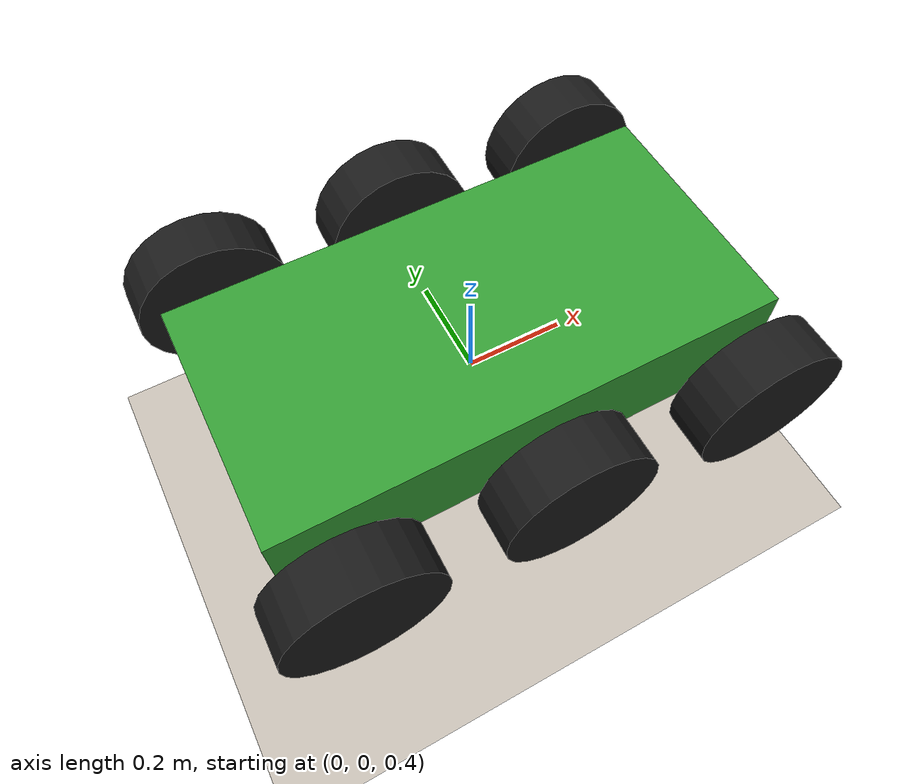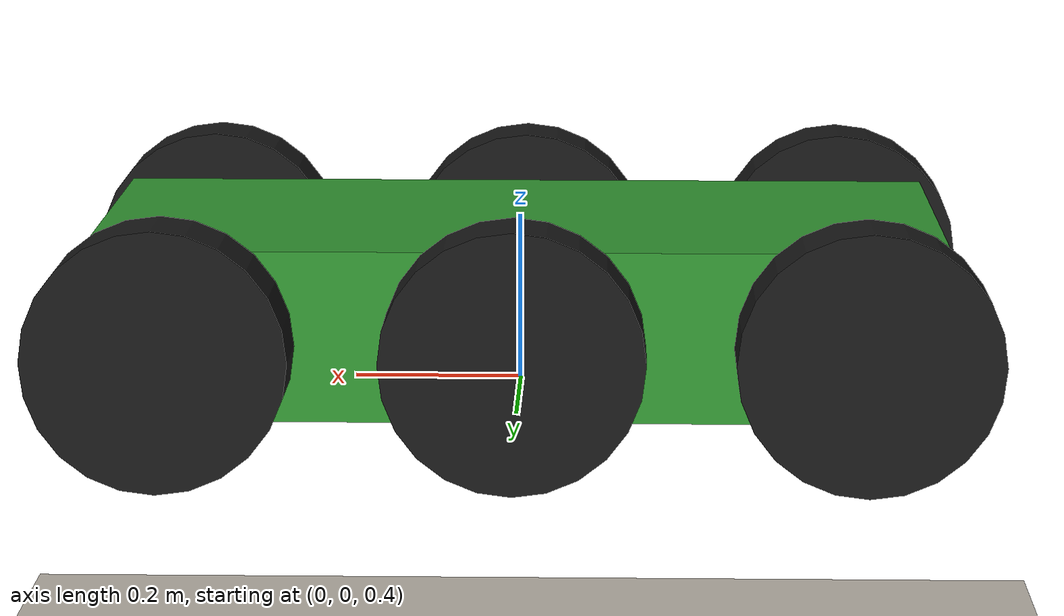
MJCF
<mujoco>
    <option gravity="0 0 -1.62"/>

    <default>
        <joint type="hinge" axis="0 1 0" damping="5.0"/>
        <geom friction="1 0.005 0.0001"/>
    </default>

    <asset>
        <texture name="checker_tex" type="2d" builtin="checker" rgb1="0.3 0.3 0.3" rgb2="0.4 0.4 0.4" width="512" height="512"/>
        <material name="checker_pattern" texture="checker_tex" texrepeat="20 20" texuniform="true"/>

        <texture name="lunar_tex" type="2d" file="lunar_surface.png"/>
        <material name="lunar_mat" texture="lunar_tex" texrepeat="0.1 0.1" texuniform="true"/>

    </asset>

    <visual>
        <headlight ambient="0 0 0" diffuse="0 0 0" specular="0 0 0" />
        <global elevation="-20" azimuth="120" />
    </visual>

    <worldbody>
        <light name="sun_light"
           directional="true"
           pos="0 0 2"
           dir="1 1 -1"
           diffuse="0.9 0.9 0.9"
           specular="0.2 0.2 0.2"
           castshadow="true" />

        <geom name="ground" type="plane" size="20 20 0.1" material="lunar_mat"/>

        <body name="player_rover" pos="0 0 0.5">
            <joint type="free" name="rover_root"/>

            <camera name="chase_cam" mode="fixed" pos="-3 0 1.5" xyaxes="0 -1 0 0.3 0 1"/>

            <geom name="chassis" type="box" size="0.5 0.25 0.1" rgba="0.2 0.6 0.2 1" mass="10"/>

            <body name="wheel_fl" pos="0.4 0.35 0">
                <joint name="joint_fl"/>
                <geom type="cylinder" size="0.15 0.05" rgba="0.1 0.1 0.1 1" euler="90 0 0"/>
            </body>

            <body name="wheel_fr" pos="0.4 -0.35 0">
                <joint name="joint_fr"/>
                <geom type="cylinder" size="0.15 0.05" rgba="0.1 0.1 0.1 1" euler="90 0 0"/>
            </body>

            <body name="wheel_ml" pos="0 0.35 0">
                <joint name="joint_ml"/>
                <geom type="cylinder" size="0.15 0.05" rgba="0.1 0.1 0.1 1" euler="90 0 0"/>
            </body>

            <body name="wheel_mr" pos="0 -0.35 0">
                <joint name="joint_mr"/>
                <geom type="cylinder" size="0.15 0.05" rgba="0.1 0.1 0.1 1" euler="90 0 0"/>
            </body>

            <body name="wheel_bl" pos="-0.4 0.35 0">
                <joint name="joint_bl"/>
                <geom type="cylinder" size="0.15 0.05" rgba="0.1 0.1 0.1 1" euler="90 0 0"/>
            </body>

            <body name="wheel_br" pos="-0.4 -0.35 0">
                <joint name="joint_br"/>
                <geom type="cylinder" size="0.15 0.05" rgba="0.1 0.1 0.1 1" euler="90 0 0"/>
            </body>
        </body>
    </worldbody>

    <actuator>
        <motor name="motor_fl" joint="joint_fl" gear="1" ctrllimited="true" ctrlrange="-50 50"/>
        <motor name="motor_fr" joint="joint_fr" gear="1" ctrllimited="true" ctrlrange="-50 50"/>
        <motor name="motor_ml" joint="joint_ml" gear="1" ctrllimited="true" ctrlrange="-50 50"/>
        <motor name="motor_mr" joint="joint_mr" gear="1" ctrllimited="true" ctrlrange="-50 50"/>
        <motor name="motor_bl" joint="joint_bl" gear="1" ctrllimited="true" ctrlrange="-50 50"/>
        <motor name="motor_br" joint="joint_br" gear="1" ctrllimited="true" ctrlrange="-50 50"/>
    </actuator>

</mujoco>
